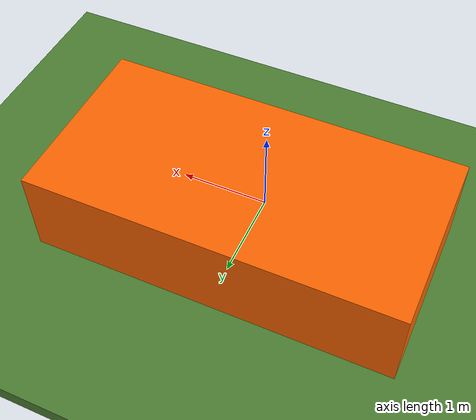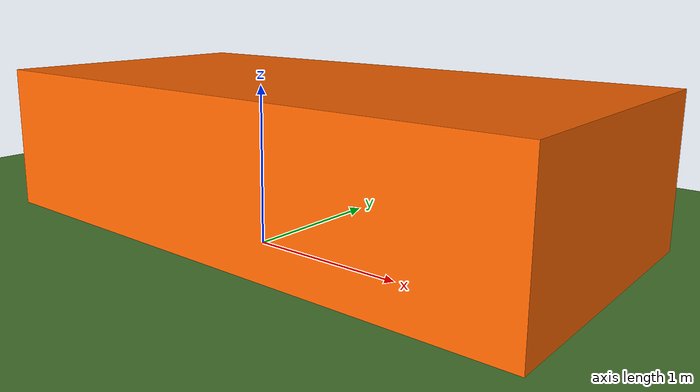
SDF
<?xml version="1.0" ?>
<sdf version="1.9">
  <world name="phase_c">

    <!-- Spherical coords: CMAC (same as Phase B SITL origin) -->
    <spherical_coordinates>
      <surface_model>EARTH_WGS84</surface_model>
      <latitude_deg>-35.363262</latitude_deg>
      <longitude_deg>149.165237</longitude_deg>
      <elevation>584.0</elevation>
      <heading_deg>0</heading_deg>
    </spherical_coordinates>

    <!-- Required system plugins -->
    <plugin filename="gz-sim-physics-system"
            name="gz::sim::systems::Physics"/>
    <plugin filename="gz-sim-sensors-system"
            name="gz::sim::systems::Sensors">
      <render_engine>ogre2</render_engine>
    </plugin>
    <plugin filename="gz-sim-user-commands-system"
            name="gz::sim::systems::UserCommands"/>
    <plugin filename="gz-sim-scene-broadcaster-system"
            name="gz::sim::systems::SceneBroadcaster"/>

    <!-- Lighting -->
    <light type="directional" name="sun">
      <cast_shadows>true</cast_shadows>
      <pose>0 0 10 0 0 0</pose>
      <diffuse>0.8 0.8 0.8 1</diffuse>
      <specular>0.2 0.2 0.2 1</specular>
      <direction>-0.5 0.1 -0.9</direction>
    </light>

    <!-- Ground plane — medium green for contrast with orange target -->
    <model name="ground_plane">
      <static>true</static>
      <pose>0 0 -0.1 0 0 0</pose>  <!-- 0.2-thick ground box centred at -0.1 -> top face at z=0 (target rests on it) -->
      <link name="link">
        <collision name="collision">
          <geometry>
            <box><size>200 200 0.2</size></box>
          </geometry>
        </collision>
        <visual name="visual">
          <geometry>
            <box><size>200 200 0.2</size></box>
          </geometry>
          <material>
            <ambient>0.3 0.5 0.2 1</ambient>
            <diffuse>0.3 0.5 0.2 1</diffuse>
            <specular>0.1 0.1 0.1 1</specular>
          </material>
        </visual>
      </link>
    </model>

    <model name="downward_cam">
      <static>true</static>  <!-- kinematic: pose driven by set_pose (follow controller), no gravity -->
      <!-- Initial pose: x=0 y=0 z=10, roll=0 pitch=+1.5707963 yaw=0 -->
      <pose>0 0 10 0 1.5707963 0</pose>
      <link name="cam_link">
        <!-- negligible inertia; we move the whole model via set_pose -->
        <inertial>
          <mass>0.001</mass>
          <inertia>
            <ixx>1e-6</ixx><iyy>1e-6</iyy><izz>1e-6</izz>
          </inertia>
        </inertial>
        <sensor name="downward_cam" type="camera">
          <update_rate>5</update_rate>
          <camera>
            <horizontal_fov>1.0472</horizontal_fov>  <!-- 60 deg -->
            <image>
              <width>640</width>
              <height>480</height>
              <format>R8G8B8</format>
            </image>
            <clip>
              <near>0.1</near>
              <far>500</far>
            </clip>
          </camera>
          <always_on>true</always_on>
          <visualize>false</visualize>
          <!-- topic: /world/phase_c/model/downward_cam/link/cam_link/sensor/downward_cam/image -->
        </sensor>
      </link>
    </model>

    <model name="target_rover">
      <static>true</static>  <!-- kinematic: driven on-rails by set_pose, no gravity (was false -> box fell through ground) -->
      <pose>0 0.5 0.5 0 0 0</pose>
      <link name="body">
        <inertial>
          <mass>1.0</mass>
          <inertia>
            <ixx>0.1</ixx><iyy>0.1</iyy><izz>0.1</izz>
          </inertia>
        </inertial>
        <collision name="collision">
          <geometry>
            <box><size>4 2 1</size></box>
          </geometry>
        </collision>
        <visual name="visual">
          <geometry>
            <box><size>4 2 1</size></box>
          </geometry>
          <material>
            <!-- Bright orange: highly visible against green ground -->
            <ambient>1.0 0.4 0.0 1</ambient>
            <diffuse>1.0 0.4 0.0 1</diffuse>
            <specular>0.2 0.1 0.0 1</specular>
          </material>
        </visual>
      </link>
    </model>

  </world>
</sdf>
